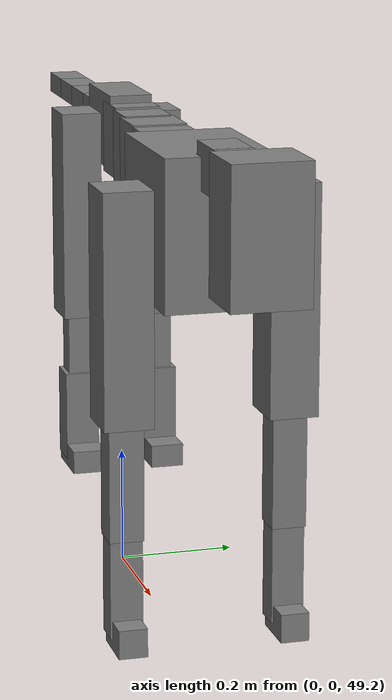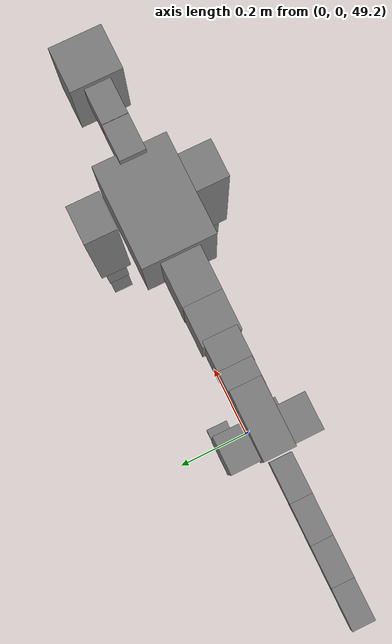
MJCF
<mujoco model="dog">

    <default>
        <joint armature="0.02" stiffness="1" damping="0.2" limited="true"/>
        <geom condim="3" friction="1 0.05 0.05" margin="0.01"/>
        <motor ctrllimited="true" ctrlrange="-1.0 1.0" forcelimited="true" gear="50"/>
    </default>

    <compiler inertiafromgeom="true" angle="radian"/>

    <option timestep="0.016" iterations="50" tolerance="1e-10" solver="Newton" jacobian="dense" cone="pyramidal"/>

    <size nconmax="20000" njmax="60000" nstack="5000000"/>
    <visual>
        <map force="0.1" zfar="30"/>
        <rgba haze="0.15 0.25 0.35 1"/>
        <quality shadowsize="2048"/>
        <global offwidth="800" offheight="800"/>
    </visual>

    <asset>
        <texture type="skybox" builtin="gradient" rgb1="0.3 0.5 0.7" rgb2="0 0 0" width="512" height="512"/>
        <texture name="texplane" type="2d" builtin="checker" rgb1=".2 .3 .4" rgb2=".1 0.15 0.2" width="512" height="512"
                 mark="cross" markrgb=".8 .8 .8"/>
        <texture name="texgeom" type="cube" builtin="flat" mark="cross" width="127" height="1278" rgb1="0.8 0.6 0.4"
                 rgb2="0.8 0.6 0.4" markrgb="1 1 1" random="0.01"/>

        <material name="matplane" reflectance="0.3" texture="texplane" texrepeat="1 1" texuniform="true"/>
        <material name="matgeom" texture="texgeom" texuniform="true" rgba="0.8 0.6 .4 1"/>
    </asset>

    <worldbody>
        <geom name="floor" pos="0 0 0" size="0 0 .25" type="plane" material="matplane" condim="3"/>

        <light directional="false" diffuse=".2 .2 .2" specular="0 0 0" pos="0 0 5" dir="0 0 -1" castshadow="false"/>
        <light mode="targetbodycom" target="torso" directional="false" diffuse=".8 .8 .8" specular="0.3 0.3 0.3"
               pos="0 0 4.0" dir="0 0 -1"/>

        <body name="root" pos="0 0 50">
            <freejoint name="root_1"/>
            <geom type="box" pos="0 0 -0.02" size="0.0774  0.0358  0.063" density="2030"/>

            <body name="spine1" pos="0.054 0 0">
                <joint name="spine1_y" axis="0 1 0" range="0 0.7" limited="true"/>
                <geom type="box" pos="0.02375 0 -0.03" size="0.04375  0.0375  0.05985" density="2030"/>

                <body name="spine2" pos="0.0612 0 0">
                    <joint name="spine2_y" axis="0 1 0" range="-0.15 0.15" limited="true"/>
                    <geom type="box" pos="0.03555  0  -0.04" size="0.04055  0.039  0.06615" density="2030"/>

                    <body name="spine3" pos="0.0730 0 0">
                        <joint name="spine3_y" axis="0 1 0" range="-0.15 0.15" limited="true"/>
                        <geom type="box" pos="0.03555  0  -0.057" size="0.04555  0.0445  0.081" density="2030"/>

                        <body name="spine4" pos="0.0780 0 0">
                            <joint name="spine4_y" axis="0 1 0" range="-0.15 0.15" limited="true"/>
                            <geom type="box" pos="0.05265  0  -0.07" size="0.05265  0.045  0.09135" density="2030"/>

                            <body name="torso" pos="0.1082 0 0">
                                <joint name="torso_y" axis="0 1 0" range="-0.15 0.15" limited="true"/>
                                <geom type="box" pos="0.11925  0  -0.085" size="0.11925  0.085  0.11745"
                                      density="2030"/>

                                <body name="neck1" pos="0.2160  0   0.0180">
                                    <joint name="neck1_y" axis="0 1 0" range="-1.2  -1" limited="true"/>
                                    <geom type="box" pos="0.0423  0  0" size="0.0423  0.03  0.036" density="2325"/>

                                    <body name="neck2" pos="0.0853  0  0">
                                        <joint name="neck2_y" axis="0 1 0" range="0.1  0" limited="true"/>
                                        <geom type="box" pos="0.0423  0  0" size="0.0423  0.03  0.036" density="2325"/>

                                        <body name="head" pos="0.0853  0  0">
                                            <joint name="head_y" axis="0 1 0" range="-0.3  -0.2" limited="true"/>
                                            <geom type="box" pos="0.0531  0  -0.055" size="0.0531  0.06  0.1044"
                                                  density="4030"/>

                                        </body>
                                    </body>
                                </body>

                                <body name="front_shoulder" pos="0.156  0   -0.0480">
                                    <joint name="front_shoulder_y" axis="0 1 0" range="-1 1.5" limited="true"/>
                                    <geom type="box" pos="0 0.13 -0.1563" size="0.0456  0.0390  0.1830" density="1158"/>
                                    <geom type="box" pos="0 -0.13 -0.1563" size="0.0456  0.0390  0.1830"
                                          density="1158"/>

                                    <body name="front_elbow" pos="0  0  -0.3126">
                                        <joint name="front_elbow_y" axis="0 1 0" range="-2 0" limited="true"/>
                                        <geom type="box" pos="0 0.13 -0.1047" size="0.0268  0.0274  0.1047"
                                              density="1081"/>
                                        <geom type="box" pos="0 -0.13 -0.1047" size="0.0268  0.0274  0.1047"
                                              density="1081"/>

                                        <body name="front_wrist" pos="0  0  -0.2095">
                                            <joint name="front_wrist_y" axis="0 1 0" range="-0.2 0" limited="true"/>
                                            <geom type="box" pos="0 0.13 -0.0719" size="0.0233  0.0259  0.0850"
                                                  density="1664"/>
                                            <geom type="box" pos="0 -0.13 -0.0719" size="0.0233  0.0259  0.0850"
                                                  density="1664"/>

                                            <body name="front_finger_end" pos="0  0  -0.1437">
                                                <joint name="front_finger_y" axis="0 1 0" range="-0.4 1"
                                                       limited="true"/>
                                                <geom type="box" pos="0.0228  0.13  -0.0081"
                                                      size="0.0418  0.0228  0.0231" density="1515"/>
                                                <geom type="box" pos="0.0228  -0.13  -0.0081"
                                                      size="0.0418  0.0228  0.0231" density="1515"/>

                                            </body>

                                        </body>
                                    </body>
                                </body>

                            </body>
                        </body>
                    </body>
                </body>
            </body>

            <body name="back_hip" pos="-0.03 0 -0.018">
                <joint name="back_hip_y" axis="0 1 0" range="-1.5 0.3" limited="true"/>
                <geom type="box" pos="0 0.07 -0.1552" size="0.0427  0.0335  0.1780" density="1154"/>
                <geom type="box" pos="0 -0.07 -0.1552" size="0.0427  0.0335  0.1780" density="1154"/>

                <body name="back_knee" pos="0  0  -0.3105">
                    <joint name="back_knee_y" axis="0 1 0" range="0 2.8" limited="true"/>
                    <geom type="box" pos="0 0.07 -0.0684" size="0.0221  0.0218  0.0839" density="1227"/>
                    <geom type="box" pos="0 -0.07 -0.0684" size="0.0221  0.0218  0.0839" density="1227"/>

                    <body name="back_ankle" pos="0  0  -0.1368">
                        <joint name="back_ankle_y" axis="0 1 0" range="-2.2 0" limited="true"/>
                        <geom type="box" pos="0 0.07 -0.0654" size="0.0288  0.0288  0.0766" density="1284"/>
                        <geom type="box" pos="0 -0.07 -0.0654" size="0.0288  0.0288  0.0766" density="1284"/>

                        <body name="back_toe_end" pos="0  0  -0.1308">
                            <joint name="back_toe_y" axis="0 1 0" range="-0.4 1" limited="true"/>
                            <geom type="box" pos="0.0282  0.07  -0.0044" size="0.0516  0.0282  0.0194" density="1515"/>
                            <geom type="box" pos="0.0282  -0.07  -0.0044" size="0.0516  0.0282  0.0194" density="1515"/>

                        </body>
                    </body>
                </body>
            </body>

            <body name="tail1" pos="-0.074 0 -0.006">
                <joint name="tail1_y" axis="0 1 0" range="-0.2 0.2" limited="true"/>
                <geom type="box" pos="-0.0536  0  0" size="0.045  0.025  0.0175" density="1587"/>

                <body name="tail2" pos="-0.09 0 0">
                    <joint name="tail2_y" axis="0 1 0" range="-0.2 0.2" limited="true"/>
                    <geom type="box" pos="-0.0536  0  0" size="0.045  0.025  0.0175" density="1587"/>

                    <body name="tail3" pos="-0.09 0 0">
                        <joint name="tail3_y" axis="0 1 0" range="-0.2 0.2" limited="true"/>
                        <geom type="box" pos="-0.0536  0  0" size="0.045  0.025  0.0175" density="1587"/>

                        <body name="tail4" pos="-0.09 0 0">
                            <joint name="tail4_y" axis="0 1 0" range="-0.2 0.2" limited="true"/>
                            <geom type="box" pos="-0.0536  0  0" size="0.045  0.025  0.0175" density="1587"/>

                        </body>
                    </body>
                </body>
            </body>
        </body>
    </worldbody>

    <actuator>
        <motor joint="spine1_y" forcerange="-150 150     "/>
        <motor joint="spine2_y" forcerange="-150 150     "/>
        <motor joint="spine3_y" forcerange="-150 150     "/>
        <motor joint="spine4_y" forcerange="-150 150     "/>
        <motor joint="torso_y" forcerange="-150 150     "/>
        <motor joint="neck1_y" forcerange="-100 100       "/>
        <motor joint="neck2_y" forcerange="-100 100       "/>
        <motor joint="head_y" forcerange="-150 150       "/>
        <motor joint="front_shoulder_y" forcerange="-174.02 185.70"/>
        <motor joint="front_elbow_y" forcerange="-100.92 198.40"/>
        <motor joint="front_wrist_y" forcerange="-76.36 130.99"/>
        <motor joint="front_finger_y" forcerange="-45.12 36.57"/>
        <motor joint="back_hip_y" forcerange="-252.43 393.92"/>
        <motor joint="back_knee_y" forcerange="-314.48 202.82"/>
        <motor joint="back_angle_y" forcerange="-120.13 240.51"/>
        <motor joint="back_toe_y" forcerange="-82.75 62.62"/>
        <motor joint="tail1_y" forcerange="-50 50     "/>
        <motor joint="tail2_y" forcerange="-50 50     "/>
        <motor joint="tail3_y" forcerange="-50 50     "/>
        <motor joint="tail4_y" forcerange="-50 50     "/>
    </actuator>
</mujoco>
